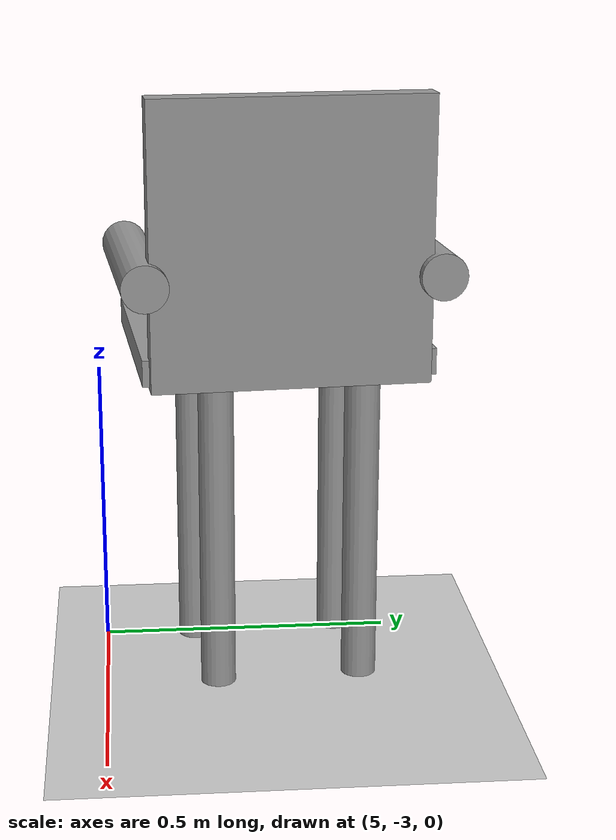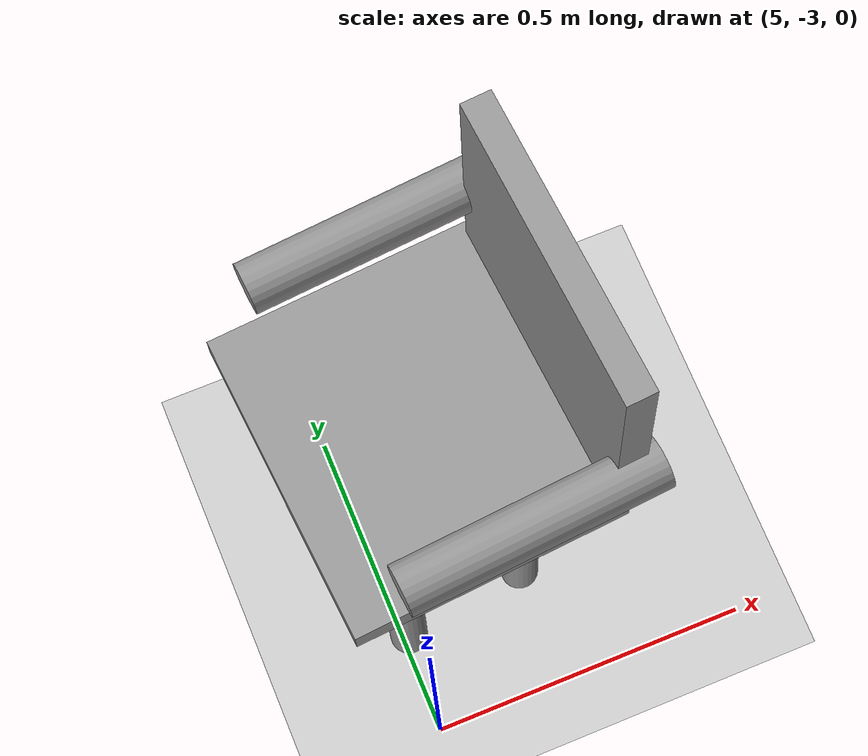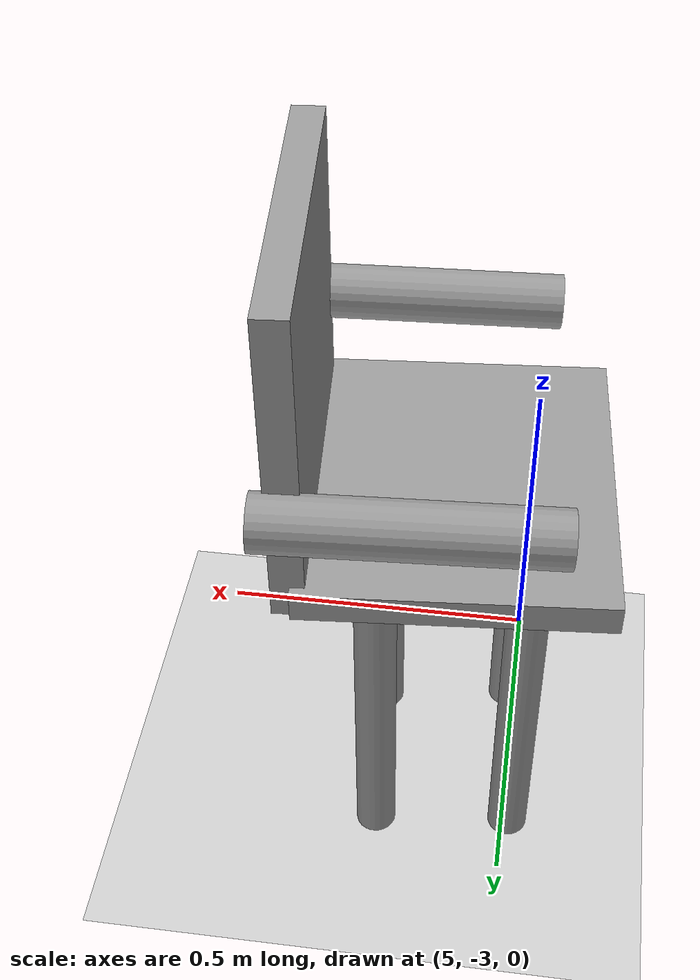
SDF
<sdf version="1.6">
 <world name="default">
  <model name="ground_plane">
   <static>1</static>
   <link name="link">
    <collision name="collision">
     <geometry><plane><normal>0 0 1</normal><size>100 100</size></plane></geometry>
     <surface>
      <contact><collide_bitmask>65535</collide_bitmask></contact>
      <friction><ode><mu>100</mu><mu2>50</mu2></ode></friction>
     </surface>
    </collision>
    <visual name="visual">
     <cast_shadows>0</cast_shadows>
     <geometry><plane><normal>0 0 1</normal><size>100 100</size></plane></geometry>
     <material>
      <script><uri>file://media/materials/scripts/gazebo.material</uri><name>Gazebo/Grey</name></script>
     </material>
    </visual>
   </link>
  </model>
  <model name="chair_clone_6">
   <link name="link_4">
    <inertial>
     <mass>0.00194051</mass>
     <inertia>
      <ixx>5.14044e-05</ixx>
      <ixy>0</ixy>
      <ixz>0</ixz>
      <iyy>5.14044e-05</iyy>
      <iyz>0</iyz>
      <izz>8.34973e-07</izz>
     </inertia>
    </inertial>
    <pose>-0.140129 -0.127166 -0.209129 0 -0 0</pose>
    <visual name="visual">
     <geometry><cylinder><radius>0.0293355</radius><length>0.561516</length></cylinder></geometry>
     <material>
      <lighting>1</lighting>
      <script><uri>file://media/materials/scripts/gazebo.material</uri><name>Gazebo/Grey</name></script>
      <emissive>0 0 0 1</emissive>
     </material>
    </visual>
    <collision name="collision">
     <geometry><cylinder><radius>0.029336</radius><length>0.561516</length></cylinder></geometry>
     <surface>
      <friction>
       <ode><mu>1</mu><mu2>1</mu2><fdir1>0 0 0</fdir1><slip1>0</slip1><slip2>0</slip2></ode>
       <torsional>
        <coefficient>1</coefficient>
        <patch_radius>0</patch_radius>
        <surface_radius>0</surface_radius>
        <use_patch_radius>1</use_patch_radius>
        <ode><slip>0</slip></ode>
       </torsional>
      </friction>
      <bounce><restitution_coefficient>0</restitution_coefficient><threshold>1e+06</threshold></bounce>
      <contact>
       <collide_without_contact>0</collide_without_contact>
       <collide_without_contact_bitmask>1</collide_without_contact_bitmask>
       <collide_bitmask>1</collide_bitmask>
       <ode>
        <soft_cfm>0</soft_cfm>
        <soft_erp>0.2</soft_erp>
        <kp>1e+13</kp>
        <kd>1</kd>
        <max_vel>0.01</max_vel>
        <min_depth>0</min_depth>
       </ode>
       <bullet>
        <split_impulse>1</split_impulse>
        <split_impulse_penetration_threshold>-0.01</split_impulse_penetration_threshold>
        <soft_cfm>0</soft_cfm>
        <soft_erp>0.2</soft_erp>
        <kp>1e+13</kp>
        <kd>1</kd>
       </bullet>
      </contact>
     </surface>
    </collision>
   </link>
   <link name="link_4_clone">
    <inertial>
     <mass>0.00194051</mass>
     <inertia>
      <ixx>5.14044e-05</ixx>
      <ixy>0</ixy>
      <ixz>0</ixz>
      <iyy>5.14044e-05</iyy>
      <iyz>0</iyz>
      <izz>8.34973e-07</izz>
     </inertia>
    </inertial>
    <pose>-0.139565 0.126187 -0.209129 0 -0 0</pose>
    <visual name="visual">
     <geometry><cylinder><radius>0.0293355</radius><length>0.561516</length></cylinder></geometry>
     <material>
      <lighting>1</lighting>
      <script><uri>file://media/materials/scripts/gazebo.material</uri><name>Gazebo/Grey</name></script>
      <shader type="pixel"/>
      <emissive>0 0 0 1</emissive>
     </material>
    </visual>
    <collision name="collision">
     <geometry><cylinder><radius>0.029336</radius><length>0.561516</length></cylinder></geometry>
     <surface>
      <friction>
       <ode><mu>1</mu><mu2>1</mu2><fdir1>0 0 0</fdir1><slip1>0</slip1><slip2>0</slip2></ode>
       <torsional>
        <coefficient>1</coefficient>
        <patch_radius>0</patch_radius>
        <surface_radius>0</surface_radius>
        <use_patch_radius>1</use_patch_radius>
        <ode><slip>0</slip></ode>
       </torsional>
      </friction>
      <bounce><restitution_coefficient>0</restitution_coefficient><threshold>1e+06</threshold></bounce>
      <contact>
       <collide_without_contact>0</collide_without_contact>
       <collide_without_contact_bitmask>1</collide_without_contact_bitmask>
       <collide_bitmask>1</collide_bitmask>
       <ode>
        <soft_cfm>0</soft_cfm>
        <soft_erp>0.2</soft_erp>
        <kp>1e+13</kp>
        <kd>1</kd>
        <max_vel>0.01</max_vel>
        <min_depth>0</min_depth>
       </ode>
       <bullet>
        <split_impulse>1</split_impulse>
        <split_impulse_penetration_threshold>-0.01</split_impulse_penetration_threshold>
        <soft_cfm>0</soft_cfm>
        <soft_erp>0.2</soft_erp>
        <kp>1e+13</kp>
        <kd>1</kd>
       </bullet>
      </contact>
     </surface>
    </collision>
   </link>
   <link name="link_4_clone_0">
    <inertial>
     <mass>0.00194051</mass>
     <inertia>
      <ixx>5.14044e-05</ixx>
      <ixy>0</ixy>
      <ixz>0</ixz>
      <iyy>5.14044e-05</iyy>
      <iyz>0</iyz>
      <izz>8.34973e-07</izz>
     </inertia>
    </inertial>
    <pose>0.062929 0.13105 -0.209129 0 -0 0</pose>
    <visual name="visual">
     <geometry><cylinder><radius>0.0293355</radius><length>0.561516</length></cylinder></geometry>
     <material>
      <lighting>1</lighting>
      <script><uri>file://media/materials/scripts/gazebo.material</uri><name>Gazebo/Grey</name></script>
      <shader type="pixel"/>
      <emissive>0 0 0 1</emissive>
     </material>
    </visual>
    <collision name="collision">
     <geometry><cylinder><radius>0.029336</radius><length>0.561516</length></cylinder></geometry>
     <surface>
      <friction>
       <ode><mu>1</mu><mu2>1</mu2><fdir1>0 0 0</fdir1><slip1>0</slip1><slip2>0</slip2></ode>
       <torsional>
        <coefficient>1</coefficient>
        <patch_radius>0</patch_radius>
        <surface_radius>0</surface_radius>
        <use_patch_radius>1</use_patch_radius>
        <ode><slip>0</slip></ode>
       </torsional>
      </friction>
      <bounce><restitution_coefficient>0</restitution_coefficient><threshold>1e+06</threshold></bounce>
      <contact>
       <collide_without_contact>0</collide_without_contact>
       <collide_without_contact_bitmask>1</collide_without_contact_bitmask>
       <collide_bitmask>1</collide_bitmask>
       <ode>
        <soft_cfm>0</soft_cfm>
        <soft_erp>0.2</soft_erp>
        <kp>1e+13</kp>
        <kd>1</kd>
        <max_vel>0.01</max_vel>
        <min_depth>0</min_depth>
       </ode>
       <bullet>
        <split_impulse>1</split_impulse>
        <split_impulse_penetration_threshold>-0.01</split_impulse_penetration_threshold>
        <soft_cfm>0</soft_cfm>
        <soft_erp>0.2</soft_erp>
        <kp>1e+13</kp>
        <kd>1</kd>
       </bullet>
      </contact>
     </surface>
    </collision>
   </link>
   <link name="link_4_clone_1">
    <inertial>
     <mass>0.00194051</mass>
     <inertia>
      <ixx>5.14044e-05</ixx>
      <ixy>0</ixy>
      <ixz>0</ixz>
      <iyy>5.14044e-05</iyy>
      <iyz>0</iyz>
      <izz>8.34973e-07</izz>
     </inertia>
    </inertial>
    <pose>0.061641 -0.111934 -0.209129 0 -0 0</pose>
    <visual name="visual">
     <geometry><cylinder><radius>0.0293355</radius><length>0.561516</length></cylinder></geometry>
     <material>
      <lighting>1</lighting>
      <script><uri>file://media/materials/scripts/gazebo.material</uri><name>Gazebo/Grey</name></script>
      <shader type="pixel"/>
      <emissive>0 0 0 1</emissive>
     </material>
    </visual>
    <collision name="collision">
     <geometry><cylinder><radius>0.029336</radius><length>0.561516</length></cylinder></geometry>
     <surface>
      <friction>
       <ode><mu>1</mu><mu2>1</mu2><fdir1>0 0 0</fdir1><slip1>0</slip1><slip2>0</slip2></ode>
       <torsional>
        <coefficient>1</coefficient>
        <patch_radius>0</patch_radius>
        <surface_radius>0</surface_radius>
        <use_patch_radius>1</use_patch_radius>
        <ode><slip>0</slip></ode>
       </torsional>
      </friction>
      <bounce><restitution_coefficient>0</restitution_coefficient><threshold>1e+06</threshold></bounce>
      <contact>
       <collide_without_contact>0</collide_without_contact>
       <collide_without_contact_bitmask>1</collide_without_contact_bitmask>
       <collide_bitmask>1</collide_bitmask>
       <ode>
        <soft_cfm>0</soft_cfm>
        <soft_erp>0.2</soft_erp>
        <kp>1e+13</kp>
        <kd>1</kd>
        <max_vel>0.01</max_vel>
        <min_depth>0</min_depth>
       </ode>
       <bullet>
        <split_impulse>1</split_impulse>
        <split_impulse_penetration_threshold>-0.01</split_impulse_penetration_threshold>
        <soft_cfm>0</soft_cfm>
        <soft_erp>0.2</soft_erp>
        <kp>1e+13</kp>
        <kd>1</kd>
       </bullet>
      </contact>
     </surface>
    </collision>
   </link>
   <link name="link_5">
    <inertial>
     <mass>0.00816884</mass>
     <inertia>
      <ixx>0.00015002</ixx>
      <ixy>0</ixy>
      <ixz>0</ixz>
      <iyy>0.000115328</iyy>
      <iyz>0</iyz>
      <izz>0.000262862</izz>
     </inertia>
    </inertial>
    <pose>-0.041662 -0.005028 0.089077 0 -0 0</pose>
    <visual name="visual">
     <geometry><box><size>0.409378 0.467496 0.042729</size></box></geometry>
     <material>
      <lighting>1</lighting>
      <script><uri>file://media/materials/scripts/gazebo.material</uri><name>Gazebo/Grey</name></script>
      <emissive>0 0 0 1</emissive>
     </material>
    </visual>
    <collision name="collision">
     <geometry><box><size>0.409378 0.467496 0.042729</size></box></geometry>
     <surface>
      <friction>
       <ode><mu>1</mu><mu2>1</mu2><fdir1>0 0 0</fdir1><slip1>0</slip1><slip2>0</slip2></ode>
       <torsional>
        <coefficient>1</coefficient>
        <patch_radius>0</patch_radius>
        <surface_radius>0</surface_radius>
        <use_patch_radius>1</use_patch_radius>
        <ode><slip>0</slip></ode>
       </torsional>
      </friction>
      <bounce><restitution_coefficient>0</restitution_coefficient><threshold>1e+06</threshold></bounce>
      <contact>
       <collide_without_contact>0</collide_without_contact>
       <collide_without_contact_bitmask>1</collide_without_contact_bitmask>
       <collide_bitmask>1</collide_bitmask>
       <ode>
        <soft_cfm>0</soft_cfm>
        <soft_erp>0.2</soft_erp>
        <kp>1e+13</kp>
        <kd>1</kd>
        <max_vel>0.01</max_vel>
        <min_depth>0</min_depth>
       </ode>
       <bullet>
        <split_impulse>1</split_impulse>
        <split_impulse_penetration_threshold>-0.01</split_impulse_penetration_threshold>
        <soft_cfm>0</soft_cfm>
        <soft_erp>0.2</soft_erp>
        <kp>1e+13</kp>
        <kd>1</kd>
       </bullet>
      </contact>
     </surface>
    </collision>
   </link>
   <link name="link_6">
    <inertial>
     <mass>0.00855687</mass>
     <inertia>
      <ixx>0.000285159</ixx>
      <ixy>0</ixy>
      <ixz>0</ixz>
      <iyy>0.000146983</iyy>
      <iyz>0</iyz>
      <izz>0.000140925</izz>
     </inertia>
    </inertial>
    <pose>0.165697 -0.006458 0.287866 0 -0 0</pose>
    <visual name="visual">
     <geometry><box><size>0.0439 0.442383 0.451884</size></box></geometry>
     <material>
      <lighting>1</lighting>
      <script><uri>file://media/materials/scripts/gazebo.material</uri><name>Gazebo/Grey</name></script>
      <emissive>0 0 0 1</emissive>
     </material>
    </visual>
    <collision name="collision">
     <geometry><box><size>0.0439 0.442383 0.451884</size></box></geometry>
     <surface>
      <friction>
       <ode><mu>1</mu><mu2>1</mu2><fdir1>0 0 0</fdir1><slip1>0</slip1><slip2>0</slip2></ode>
       <torsional>
        <coefficient>1</coefficient>
        <patch_radius>0</patch_radius>
        <surface_radius>0</surface_radius>
        <use_patch_radius>1</use_patch_radius>
        <ode><slip>0</slip></ode>
       </torsional>
      </friction>
      <bounce><restitution_coefficient>0</restitution_coefficient><threshold>1e+06</threshold></bounce>
      <contact>
       <collide_without_contact>0</collide_without_contact>
       <collide_without_contact_bitmask>1</collide_without_contact_bitmask>
       <collide_bitmask>1</collide_bitmask>
       <ode>
        <soft_cfm>0</soft_cfm>
        <soft_erp>0.2</soft_erp>
        <kp>1e+13</kp>
        <kd>1</kd>
        <max_vel>0.01</max_vel>
        <min_depth>0</min_depth>
       </ode>
       <bullet>
        <split_impulse>1</split_impulse>
        <split_impulse_penetration_threshold>-0.01</split_impulse_penetration_threshold>
        <soft_cfm>0</soft_cfm>
        <soft_erp>0.2</soft_erp>
        <kp>1e+13</kp>
        <kd>1</kd>
       </bullet>
      </contact>
     </surface>
    </collision>
   </link>
   <link name="link_7">
    <inertial>
     <mass>0.00209129</mass>
     <inertia>
      <ixx>2.57536e-05</ixx>
      <ixy>0</ixy>
      <ixz>0</ixz>
      <iyy>2.57536e-05</iyy>
      <iyz>0</iyz>
      <izz>1.44551e-06</izz>
     </inertia>
    </inertial>
    <pose>0.0147 0.228665 0.230372 0 1.55081 0</pose>
    <visual name="visual">
     <geometry><cylinder><radius>0.0371808</radius><length>0.378984</length></cylinder></geometry>
     <material>
      <lighting>1</lighting>
      <script><uri>file://media/materials/scripts/gazebo.material</uri><name>Gazebo/Grey</name></script>
      <emissive>0 0 0 1</emissive>
     </material>
    </visual>
    <collision name="collision">
     <geometry><cylinder><radius>0.037181</radius><length>0.378984</length></cylinder></geometry>
     <surface>
      <friction>
       <ode><mu>1</mu><mu2>1</mu2><fdir1>0 0 0</fdir1><slip1>0</slip1><slip2>0</slip2></ode>
       <torsional>
        <coefficient>1</coefficient>
        <patch_radius>0</patch_radius>
        <surface_radius>0</surface_radius>
        <use_patch_radius>1</use_patch_radius>
        <ode><slip>0</slip></ode>
       </torsional>
      </friction>
      <bounce><restitution_coefficient>0</restitution_coefficient><threshold>1e+06</threshold></bounce>
      <contact>
       <collide_without_contact>0</collide_without_contact>
       <collide_without_contact_bitmask>1</collide_without_contact_bitmask>
       <collide_bitmask>1</collide_bitmask>
       <ode>
        <soft_cfm>0</soft_cfm>
        <soft_erp>0.2</soft_erp>
        <kp>1e+13</kp>
        <kd>1</kd>
        <max_vel>0.01</max_vel>
        <min_depth>0</min_depth>
       </ode>
       <bullet>
        <split_impulse>1</split_impulse>
        <split_impulse_penetration_threshold>-0.01</split_impulse_penetration_threshold>
        <soft_cfm>0</soft_cfm>
        <soft_erp>0.2</soft_erp>
        <kp>1e+13</kp>
        <kd>1</kd>
       </bullet>
      </contact>
     </surface>
    </collision>
   </link>
   <link name="link_7_clone">
    <inertial>
     <mass>0.00209129</mass>
     <inertia>
      <ixx>2.57536e-05</ixx>
      <ixy>0</ixy>
      <ixz>0</ixz>
      <iyy>2.57536e-05</iyy>
      <iyz>0</iyz>
      <izz>1.44551e-06</izz>
     </inertia>
    </inertial>
    <pose>0.01639 -0.235319 0.229201 0 1.55081 0</pose>
    <visual name="visual">
     <geometry><cylinder><radius>0.0371808</radius><length>0.378984</length></cylinder></geometry>
     <material>
      <lighting>1</lighting>
      <script><uri>file://media/materials/scripts/gazebo.material</uri><name>Gazebo/Grey</name></script>
      <shader type="pixel"/>
      <emissive>0 0 0 1</emissive>
     </material>
    </visual>
    <collision name="collision">
     <geometry><cylinder><radius>0.037181</radius><length>0.378984</length></cylinder></geometry>
     <surface>
      <friction>
       <ode><mu>1</mu><mu2>1</mu2><fdir1>0 0 0</fdir1><slip1>0</slip1><slip2>0</slip2></ode>
       <torsional>
        <coefficient>1</coefficient>
        <patch_radius>0</patch_radius>
        <surface_radius>0</surface_radius>
        <use_patch_radius>1</use_patch_radius>
        <ode><slip>0</slip></ode>
       </torsional>
      </friction>
      <bounce><restitution_coefficient>0</restitution_coefficient><threshold>1e+06</threshold></bounce>
      <contact>
       <collide_without_contact>0</collide_without_contact>
       <collide_without_contact_bitmask>1</collide_without_contact_bitmask>
       <collide_bitmask>1</collide_bitmask>
       <ode>
        <soft_cfm>0</soft_cfm>
        <soft_erp>0.2</soft_erp>
        <kp>1e+13</kp>
        <kd>1</kd>
        <max_vel>0.01</max_vel>
        <min_depth>0</min_depth>
       </ode>
       <bullet>
        <split_impulse>1</split_impulse>
        <split_impulse_penetration_threshold>-0.01</split_impulse_penetration_threshold>
        <soft_cfm>0</soft_cfm>
        <soft_erp>0.2</soft_erp>
        <kp>1e+13</kp>
        <kd>1</kd>
       </bullet>
      </contact>
     </surface>
    </collision>
   </link>
   <joint name="link_5_JOINT_2" type="fixed">
    <parent>link_5</parent>
    <child>link_4_clone_1</child>
    <physics>
     <ode><limit><cfm>0</cfm><erp>0.2</erp></limit><suspension><cfm>0</cfm><erp>0.2</erp></suspension></ode>
    </physics>
   </joint>
   <joint name="link_5_JOINT_3" type="fixed">
    <parent>link_5</parent>
    <child>link_4</child>
    <physics>
     <ode><limit><cfm>0</cfm><erp>0.2</erp></limit><suspension><cfm>0</cfm><erp>0.2</erp></suspension></ode>
    </physics>
   </joint>
   <joint name="link_5_JOINT_4" type="fixed">
    <parent>link_5</parent>
    <child>link_4_clone_0</child>
    <physics>
     <ode><limit><cfm>0</cfm><erp>0.2</erp></limit><suspension><cfm>0</cfm><erp>0.2</erp></suspension></ode>
    </physics>
   </joint>
   <joint name="link_5_JOINT_5" type="fixed">
    <parent>link_5</parent>
    <child>link_4_clone</child>
    <physics>
     <ode><limit><cfm>0</cfm><erp>0.2</erp></limit><suspension><cfm>0</cfm><erp>0.2</erp></suspension></ode>
    </physics>
   </joint>
   <joint name="link_5_JOINT_6" type="fixed">
    <parent>link_5</parent>
    <child>link_6</child>
    <physics>
     <ode><limit><cfm>0</cfm><erp>0.2</erp></limit><suspension><cfm>0</cfm><erp>0.2</erp></suspension></ode>
    </physics>
   </joint>
   <joint name="link_5_JOINT_7" type="fixed">
    <parent>link_5</parent>
    <child>link_7</child>
    <physics>
     <ode><limit><cfm>0</cfm><erp>0.2</erp></limit><suspension><cfm>0</cfm><erp>0.2</erp></suspension></ode>
    </physics>
   </joint>
   <joint name="link_5_JOINT_8" type="fixed">
    <parent>link_5</parent>
    <child>link_7_clone</child>
    <physics>
     <ode><limit><cfm>0</cfm><erp>0.2</erp></limit><suspension><cfm>0</cfm><erp>0.2</erp></suspension></ode>
    </physics>
   </joint>
   <static>0</static>
   <pose>5.14001 -2.70372 0.489878 0 3.3e-05 0.07637</pose>
  </model>
 </world>
</sdf>
